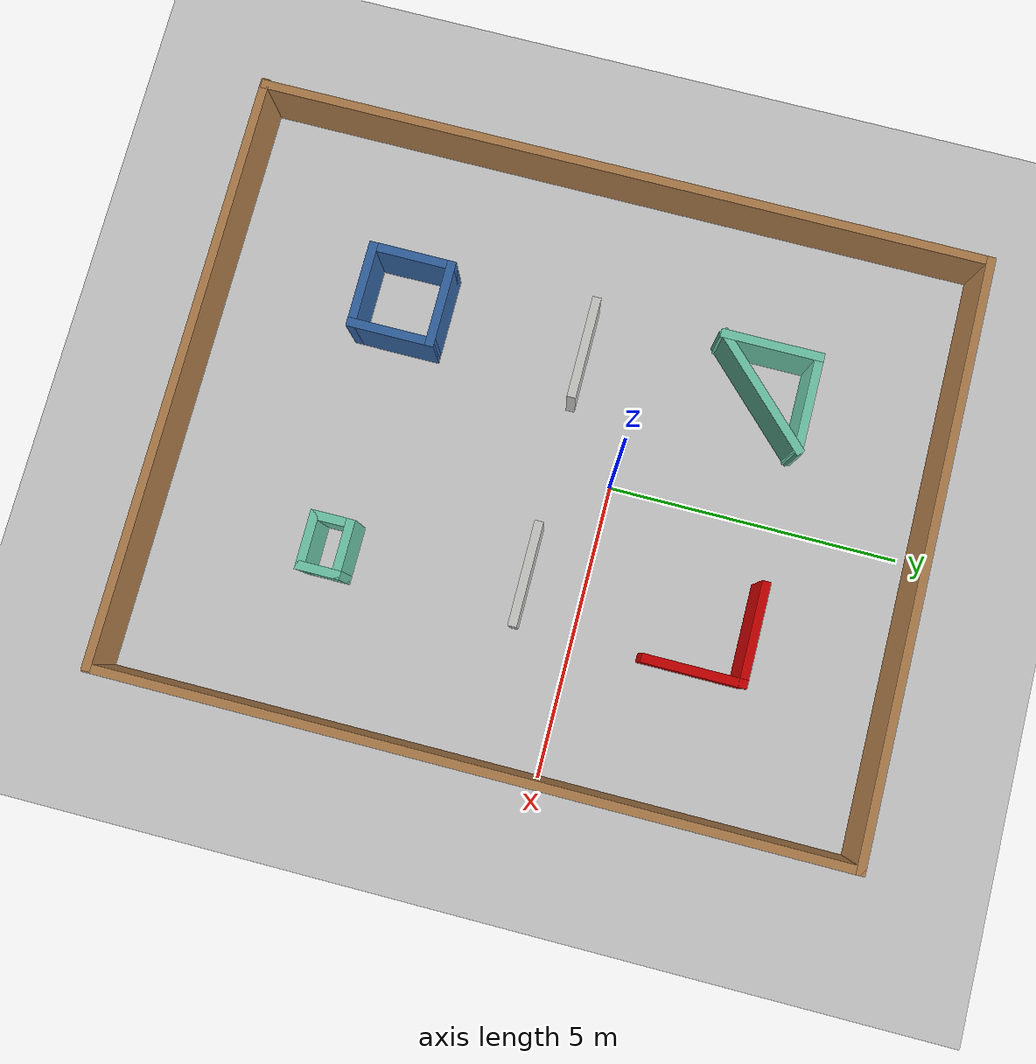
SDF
<sdf version="1.7">
 <world name="default">
  <light name="sun" type="directional">
   <pose>0 0 10 0 -0 0</pose>
   <diffuse>0.8 0.8 0.8 1</diffuse>
   <specular>0.2 0.2 0.2 1</specular>
   <attenuation>
    <range>1000</range>
    <constant>0.9</constant>
    <linear>0.01</linear>
    <quadratic>0.001</quadratic>
   </attenuation>
   <direction>-0.5 0.1 -0.9</direction>
   <spot><inner_angle>0</inner_angle><outer_angle>0</outer_angle><falloff>0</falloff></spot>
  </light>
  <model name="ground_plane">
   <static>1</static>
   <link name="link">
    <collision name="collision">
     <geometry><plane><normal>0 0 1</normal><size>100 100</size></plane></geometry>
     <surface><friction><ode><mu>100</mu><mu2>50</mu2></ode></friction></surface>
    </collision>
    <visual name="visual">
     <cast_shadows>0</cast_shadows>
     <geometry><plane><normal>0 0 1</normal><size>100 100</size></plane></geometry>
     <material>
      <script><uri>file://media/materials/scripts/gazebo.material</uri><name>Gazebo/Grey</name></script>
     </material>
    </visual>
   </link>
  </model>
  <gravity>0 0 -9.8</gravity>
  <magnetic_field>6e-06 2.3e-05 -4.2e-05</magnetic_field>
  <atmosphere type="adiabatic"/>
  <physics type="ode">
   <max_step_size>0.001</max_step_size>
   <real_time_factor>1</real_time_factor>
   <real_time_update_rate>1000</real_time_update_rate>
  </physics>
  <scene><ambient>0.4 0.4 0.4 1</ambient><background>0.7 0.7 0.7 1</background><shadows>1</shadows></scene>
  <spherical_coordinates>
   <surface_model>EARTH_WGS84</surface_model>
   <latitude_deg>0</latitude_deg>
   <longitude_deg>0</longitude_deg>
   <elevation>0</elevation>
   <heading_deg>0</heading_deg>
  </spherical_coordinates>
  <model name="complex_env">
   <pose>-0.054374 -1.07837 0 0 -0 0</pose>
   <link name="Wall_0">
    <collision name="Wall_0_Collision">
     <geometry><box><size>10.3 0.15 1.2</size></box></geometry>
     <pose>0 0 0.6 0 -0 0</pose>
    </collision>
    <visual name="Wall_0_Visual">
     <pose>0 0 0.6 0 -0 0</pose>
     <geometry><box><size>10.3 0.15 1.2</size></box></geometry>
     <material>
      <script><uri>file://media/materials/scripts/gazebo.material</uri><name>Gazebo/Wood</name></script>
      <ambient>1 1 1 1</ambient>
     </material>
     <meta><layer>0</layer></meta>
    </visual>
    <pose>0.0095 6.31 0 0 -0 0</pose>
   </link>
   <link name="Wall_17">
    <collision name="Wall_17_Collision">
     <geometry><box><size>1.75 0.15 1.2</size></box></geometry>
     <pose>0 0 0.6 0 -0 0</pose>
    </collision>
    <visual name="Wall_17_Visual">
     <pose>0 0 0.6 0 -0 0</pose>
     <geometry><box><size>1.75 0.15 1.2</size></box></geometry>
     <material>
      <script><uri>file://media/materials/scripts/gazebo.material</uri><name>Gazebo/Grey</name></script>
      <ambient>0.435294 0.796078 0.67451 1</ambient>
     </material>
     <meta><layer>0</layer></meta>
    </visual>
    <pose>-2.7605 3.099 0 0 -0 -1.5708</pose>
   </link>
   <link name="Wall_19">
    <collision name="Wall_19_Collision">
     <geometry><box><size>1.75 0.15 1.2</size></box></geometry>
     <pose>0 0 0.6 0 -0 0</pose>
    </collision>
    <visual name="Wall_19_Visual">
     <pose>0 0 0.6 0 -0 0</pose>
     <geometry><box><size>1.75 0.15 1.2</size></box></geometry>
     <material>
      <script><uri>file://media/materials/scripts/gazebo.material</uri><name>Gazebo/Grey</name></script>
      <ambient>0.435294 0.796078 0.67451 1</ambient>
     </material>
     <meta><layer>0</layer></meta>
    </visual>
    <pose>-1.9605 3.899 0 0 -0 0</pose>
   </link>
   <link name="Wall_2">
    <collision name="Wall_2_Collision">
     <geometry><box><size>12.75 0.15 1.2</size></box></geometry>
     <pose>0 0 0.6 0 -0 0</pose>
    </collision>
    <visual name="Wall_2_Visual">
     <pose>0 0 0.6 0 -0 0</pose>
     <geometry><box><size>12.75 0.15 1.2</size></box></geometry>
     <material>
      <script><uri>file://media/materials/scripts/gazebo.material</uri><name>Gazebo/Wood</name></script>
      <ambient>1 1 1 1</ambient>
     </material>
     <meta><layer>0</layer></meta>
    </visual>
    <pose>-5.0655 0.009999 0 0 -0 -1.5708</pose>
   </link>
   <link name="Wall_25">
    <collision name="Wall_25_Collision">
     <geometry><box><size>1.75 0.15 1.2</size></box></geometry>
     <pose>0 0 0.6 0 -0 0</pose>
    </collision>
    <visual name="Wall_25_Visual">
     <pose>0 0 0.6 0 -0 0</pose>
     <geometry><box><size>1.75 0.15 1.2</size></box></geometry>
     <material>
      <script><uri>file://media/materials/scripts/gazebo.material</uri><name>Gazebo/Grey</name></script>
      <ambient>0.8 0 0 1</ambient>
     </material>
     <meta><layer>0</layer></meta>
    </visual>
    <pose>2.7365 3.082 0 0 -0 -1.5708</pose>
   </link>
   <link name="Wall_29">
    <collision name="Wall_29_Collision">
     <geometry><box><size>1.75 0.15 1.2</size></box></geometry>
     <pose>0 0 0.6 0 -0 0</pose>
    </collision>
    <visual name="Wall_29_Visual">
     <pose>0 0 0.6 0 -0 0</pose>
     <geometry><box><size>1.75 0.15 1.2</size></box></geometry>
     <material>
      <script><uri>file://media/materials/scripts/gazebo.material</uri><name>Gazebo/Grey</name></script>
      <ambient>0.8 0 0 1</ambient>
     </material>
     <meta><layer>0</layer></meta>
    </visual>
    <pose>1.9365 3.882 0 0 -0 3.14159</pose>
   </link>
   <link name="Wall_4">
    <collision name="Wall_4_Collision">
     <geometry><box><size>12.75 0.15 1.2</size></box></geometry>
     <pose>0 0 0.6 0 -0 0</pose>
    </collision>
    <visual name="Wall_4_Visual">
     <pose>0 0 0.6 0 -0 0</pose>
     <geometry><box><size>12.75 0.15 1.2</size></box></geometry>
     <material>
      <script><uri>file://media/materials/scripts/gazebo.material</uri><name>Gazebo/Wood</name></script>
      <ambient>1 1 1 1</ambient>
     </material>
     <meta><layer>0</layer></meta>
    </visual>
    <pose>5.0845 0.009999 0 0 -0 -1.5708</pose>
   </link>
   <link name="Wall_42">
    <collision name="Wall_42_Collision">
     <geometry><box><size>2.41274 0.15 1.2</size></box></geometry>
     <pose>0 0 0.6 0 -0 0</pose>
    </collision>
    <visual name="Wall_42_Visual">
     <pose>0 0 0.6 0 -0 0</pose>
     <geometry><box><size>2.41274 0.15 1.2</size></box></geometry>
     <material>
      <script><uri>file://media/materials/scripts/gazebo.material</uri><name>Gazebo/Grey</name></script>
      <ambient>0.435294 0.796078 0.67451 1</ambient>
     </material>
     <meta><layer>0</layer></meta>
    </visual>
    <pose>-1.9605 3.099 0 0 -0 -2.35619</pose>
   </link>
   <link name="Wall_68">
    <collision name="Wall_68_Collision">
     <geometry><box><size>1.5 0.15 1.2</size></box></geometry>
     <pose>0 0 0.6 0 -0 0</pose>
    </collision>
    <visual name="Wall_68_Visual">
     <pose>0 0 0.6 0 -0 0</pose>
     <geometry><box><size>1.5 0.15 1.2</size></box></geometry>
     <material>
      <script><uri>file://media/materials/scripts/gazebo.material</uri><name>Gazebo/Grey</name></script>
      <ambient>0.203922 0.396078 0.643137 1</ambient>
     </material>
     <meta><layer>0</layer></meta>
    </visual>
    <pose>-2.0855 -2.401 0 0 -0 0</pose>
   </link>
   <link name="Wall_69">
    <collision name="Wall_69_Collision">
     <geometry><box><size>1.5 0.15 1.2</size></box></geometry>
     <pose>0 0 0.6 0 -0 0</pose>
    </collision>
    <visual name="Wall_69_Visual">
     <pose>0 0 0.6 0 -0 0</pose>
     <geometry><box><size>1.5 0.15 1.2</size></box></geometry>
     <material>
      <script><uri>file://media/materials/scripts/gazebo.material</uri><name>Gazebo/Grey</name></script>
      <ambient>0.203922 0.396078 0.643137 1</ambient>
     </material>
     <meta><layer>0</layer></meta>
    </visual>
    <pose>-1.4105 -3.076 0 0 -0 -1.5708</pose>
   </link>
   <link name="Wall_70">
    <collision name="Wall_70_Collision">
     <geometry><box><size>1.5 0.15 1.2</size></box></geometry>
     <pose>0 0 0.6 0 -0 0</pose>
    </collision>
    <visual name="Wall_70_Visual">
     <pose>0 0 0.6 0 -0 0</pose>
     <geometry><box><size>1.5 0.15 1.2</size></box></geometry>
     <material>
      <script><uri>file://media/materials/scripts/gazebo.material</uri><name>Gazebo/Grey</name></script>
      <ambient>0.203922 0.396078 0.643137 1</ambient>
     </material>
     <meta><layer>0</layer></meta>
    </visual>
    <pose>-2.0855 -3.751 0 0 -0 3.14159</pose>
   </link>
   <link name="Wall_71">
    <collision name="Wall_71_Collision">
     <geometry><box><size>1.5 0.15 1.2</size></box></geometry>
     <pose>0 0 0.6 0 -0 0</pose>
    </collision>
    <visual name="Wall_71_Visual">
     <pose>0 0 0.6 0 -0 0</pose>
     <geometry><box><size>1.5 0.15 1.2</size></box></geometry>
     <material>
      <script><uri>file://media/materials/scripts/gazebo.material</uri><name>Gazebo/Grey</name></script>
      <ambient>0.203922 0.396078 0.643137 1</ambient>
     </material>
     <meta><layer>0</layer></meta>
    </visual>
    <pose>-2.7605 -3.076 0 0 -0 1.5708</pose>
   </link>
   <link name="Wall_82">
    <collision name="Wall_82_Collision">
     <geometry><box><size>10.3 0.15 1.2</size></box></geometry>
     <pose>0 0 0.6 0 -0 0</pose>
    </collision>
    <visual name="Wall_82_Visual">
     <pose>0 0 0.6 0 -0 0</pose>
     <geometry><box><size>10.3 0.15 1.2</size></box></geometry>
     <material>
      <script><uri>file://media/materials/scripts/gazebo.material</uri><name>Gazebo/Wood</name></script>
      <ambient>1 1 1 1</ambient>
     </material>
     <meta><layer>0</layer></meta>
    </visual>
    <pose>-0.0095 -6.31 0 0 -0 0</pose>
   </link>
   <link name="Wall_85">
    <collision name="Wall_85_Collision">
     <geometry><box><size>1.75 0.15 1.2</size></box></geometry>
     <pose>0 0 0.6 0 -0 0</pose>
    </collision>
    <visual name="Wall_85_Visual">
     <pose>0 0 0.6 0 -0 0</pose>
     <geometry><box><size>1.75 0.15 1.2</size></box></geometry>
     <material>
      <script><uri>file://media/materials/scripts/gazebo.material</uri><name>Gazebo/CeilingTiled</name></script>
      <ambient>1 1 1 1</ambient>
     </material>
     <meta><layer>0</layer></meta>
    </visual>
    <pose>-1.9575 0.090999 0 0 -0 0</pose>
   </link>
   <link name="Wall_87">
    <collision name="Wall_87_Collision">
     <geometry><box><size>1.75 0.15 1.2</size></box></geometry>
     <pose>0 0 0.6 0 -0 0</pose>
    </collision>
    <visual name="Wall_87_Visual">
     <pose>0 0 0.6 0 -0 0</pose>
     <geometry><box><size>1.75 0.15 1.2</size></box></geometry>
     <material>
      <script><uri>file://media/materials/scripts/gazebo.material</uri><name>Gazebo/CeilingTiled</name></script>
      <ambient>1 1 1 1</ambient>
     </material>
     <meta><layer>0</layer></meta>
    </visual>
    <pose>1.8985 0.090999 0 0 -0 3.14159</pose>
   </link>
   <link name="Wall_95">
    <collision name="Wall_95_Collision">
     <geometry><box><size>1 0.15 1.2</size></box></geometry>
     <pose>0 0 0.6 0 -0 0</pose>
    </collision>
    <visual name="Wall_95_Visual">
     <pose>0 0 0.6 0 -0 0</pose>
     <geometry><box><size>1 0.15 1.2</size></box></geometry>
     <material>
      <script><uri>file://media/materials/scripts/gazebo.material</uri><name>Gazebo/Grey</name></script>
      <ambient>0.435294 0.796078 0.67451 1</ambient>
     </material>
     <meta><layer>0</layer></meta>
    </visual>
    <pose>2.2495 -2.865 0 0 -0 0</pose>
   </link>
   <link name="Wall_96">
    <collision name="Wall_96_Collision">
     <geometry><box><size>0.75 0.15 1.2</size></box></geometry>
     <pose>0 0 0.6 0 -0 0</pose>
    </collision>
    <visual name="Wall_96_Visual">
     <pose>0 0 0.6 0 -0 0</pose>
     <geometry><box><size>0.75 0.15 1.2</size></box></geometry>
     <material>
      <script><uri>file://media/materials/scripts/gazebo.material</uri><name>Gazebo/Grey</name></script>
      <ambient>0.435294 0.796078 0.67451 1</ambient>
     </material>
     <meta><layer>0</layer></meta>
    </visual>
    <pose>2.6745 -3.165 0 0 -0 -1.5708</pose>
   </link>
   <link name="Wall_97">
    <collision name="Wall_97_Collision">
     <geometry><box><size>1 0.15 1.2</size></box></geometry>
     <pose>0 0 0.6 0 -0 0</pose>
    </collision>
    <visual name="Wall_97_Visual">
     <pose>0 0 0.6 0 -0 0</pose>
     <geometry><box><size>1 0.15 1.2</size></box></geometry>
     <material>
      <script><uri>file://media/materials/scripts/gazebo.material</uri><name>Gazebo/Grey</name></script>
      <ambient>0.435294 0.796078 0.67451 1</ambient>
     </material>
     <meta><layer>0</layer></meta>
    </visual>
    <pose>2.2495 -3.465 0 0 -0 3.14159</pose>
   </link>
   <link name="Wall_98">
    <collision name="Wall_98_Collision">
     <geometry><box><size>0.75 0.15 1.2</size></box></geometry>
     <pose>0 0 0.6 0 -0 0</pose>
    </collision>
    <visual name="Wall_98_Visual">
     <pose>0 0 0.6 0 -0 0</pose>
     <geometry><box><size>0.75 0.15 1.2</size></box></geometry>
     <material>
      <script><uri>file://media/materials/scripts/gazebo.material</uri><name>Gazebo/Grey</name></script>
      <ambient>0.435294 0.796078 0.67451 1</ambient>
     </material>
     <meta><layer>0</layer></meta>
    </visual>
    <pose>1.8245 -3.165 0 0 -0 1.5708</pose>
   </link>
   <static>1</static>
  </model>
 </world>
</sdf>
